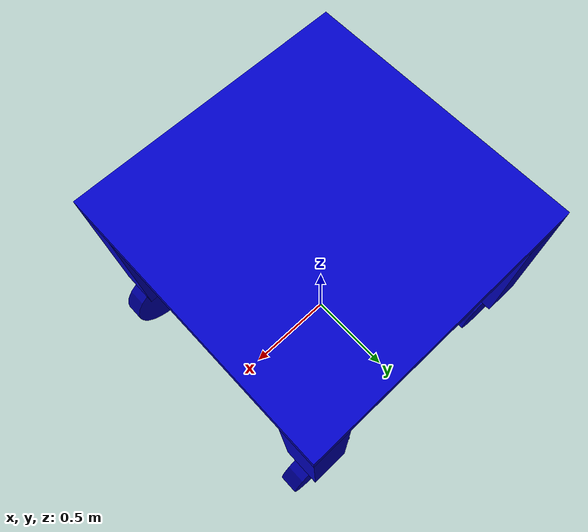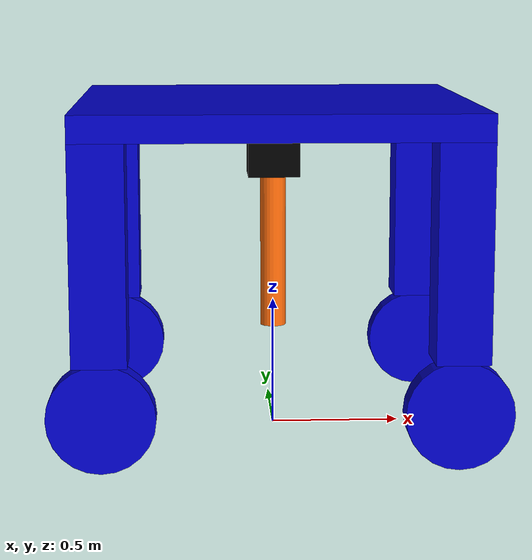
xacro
<?xml version="1.0"?>
<robot xmlns:xacro="http://www.ros.org/wiki/xacro" name="robot">
	<xacro:include filename="inertia.urdf.xacro" />
	<xacro:include filename="materials.urdf.xacro" />

	<link name="world"></link>

	<xacro:property name="height" value="1.2" />
	<joint name="base_joint" type="fixed">
		<origin xyz="0 0 1.2" rpy="0 0 0" />
		<parent link="world" />
		<child link="base_link" />
	</joint>

	<xacro:property name="base_l" value="1.5" />
	<xacro:property name="base_w" value="1.5" />
	<xacro:property name="base_h" value="0.1" />
	<xacro:property name="base_m" value="5" />
	<link name="base_link">
		<visual>
			<origin xyz="0 0 ${base_h/2}" rpy="0 0 0" />
			<geometry>
				<box size="${base_l} ${base_w} ${base_h}" />
			</geometry>
			<material name="blue"/>
		</visual>
		<collision>
			<origin xyz="0 0 ${base_h/2}" rpy="0 0 0" />
			<geometry>
				<box size="${base_l} ${base_w} ${base_h}" />
			</geometry>
		</collision>
		<inertial>
			<origin xyz="0 0 ${base_h/2}" rpy="0 0 0" />
			<mass value="${base_m}" />
			<xacro:box_inertia m="${base_m}" x="${base_l}" y="${base_w}" z="${base_h}" />
		</inertial>
	</link>

	<joint name="first_axis_joint" type="prismatic">
		<origin xyz="0 0 0" rpy="0 0 0" />
		<parent link="base_link" />
		<child link="first_axis_link" />
		<axis xyz="1 0 0" />
		<limit lower="${-base_l/2}" upper="${base_l/2}" velocity="100" effort="100" />
	</joint>

	<xacro:property name="first_l" value="0.2" />
	<xacro:property name="first_w" value="0.2" />
	<xacro:property name="first_h" value="0.2" />
	<xacro:property name="first_m" value="0.5" />
	<link name="first_axis_link">
		<visual>
			<origin xyz="0 0 ${-first_h/2}" rpy="0 0 0" />
			<geometry>
				<box size="${first_l} ${first_w} ${first_h}" />
			</geometry>
			<material name="black"/>
		</visual>
		<collision>
			<origin xyz="0 0 ${-first_h}" rpy="0 0 0" />
			<geometry>
				<box size="${first_l} ${first_w} ${first_h}" />
			</geometry>
		</collision>
		<inertial>
			<origin xyz="0 0 ${-first_h/2}" rpy="0 0 0" />
			<mass value="${first_m}" />
			<xacro:box_inertia m="${first_m}" x="${first_l}" y="${first_w}" z="${first_h}" />
		</inertial>
	</link>

	<joint name="second_axis_joint" type="revolute">
		<origin xyz="0 0 ${-first_h}" rpy="0 0 0" />
		<parent link="first_axis_link" />
		<child link="second_axis_link" />
		<axis xyz="1 0 0" />
		<limit lower="${-pi/2}" upper="${pi/2}" velocity="100" effort="100" />
	</joint>

	<xacro:property name="arm_length" value="0.6" />
	<xacro:property name="arm_radius" value="0.05" />
	<xacro:property name="arm_mass" value="1" />
	<link name="second_axis_link">
		<visual>
			<origin xyz="0 0 ${-arm_length/2}" rpy="0 0 0" />
			<geometry>
				<cylinder length="${arm_length}" radius="${arm_radius}" />
			</geometry>
			<material name="orange"/>
		</visual>
		<collision>
			<origin xyz="0 0 ${-arm_length/2}" rpy="0 0 0" />
			<geometry>
				<cylinder length="${arm_length}" radius="${arm_radius}" />
			</geometry>
		</collision>
		<inertial>
			<origin xyz="0 0 ${-arm_length/2}" rpy="0 0 0" />
			<mass value="${arm_mass}" />
			<xacro:cylinder_inertia m="${arm_mass}" r="${arm_radius}" h="${arm_length}" />
		</inertial>
	</link>

	<xacro:property name="arm2_radius" value="0.03" />
	<xacro:property name="arm2_length" value="0.5" />
	<xacro:property name="arm2_mass" value="0.5" />
	<joint name="third_axis_joint" type="prismatic">
		<origin xyz="0 0 ${-arm_length}" rpy="0 0 0" />
		<parent link="second_axis_link" />
		<child link="third_axis_link" />
		<axis xyz="0 0 -1" />
		<limit lower="0" upper="${arm2_length}" velocity="100" effort="100" />
	</joint>

	<link name="third_axis_link">
		<visual>
			<origin xyz="0 0 ${arm2_length/2}" rpy="0 0 0" />
			<geometry>
				<cylinder length="${arm2_length}" radius="${arm2_radius}" />
			</geometry>
			<material name="orange"/>
		</visual>
		<collision>
			<origin xyz="0 0 ${arm2_length/2}" rpy="0 0 0" />
			<geometry>
				<cylinder length="${arm2_length}" radius="${arm2_radius}" />
			</geometry>
		</collision>
		<inertial>
			<origin xyz="0 0 ${arm2_length/2}" rpy="0 0 0" />
			<mass value="${arm2_mass}" />
			<xacro:cylinder_inertia m="${arm2_mass}" r="${arm2_radius}" h="${arm2_length}" />
		</inertial>
	</link>

	<xacro:property name="top_l" value="0.2" />
	<xacro:property name="top_w" value="0.2" />
	<xacro:property name="wheel_r" value="0.2" />
	<xacro:property name="wheel_l" value="0.1" />
	<xacro:property name="wheel_m" value="5" />
	<xacro:property name="top_h" value="${height-2*wheel_r}" />
	<xacro:macro name="wheel" params="prefix x y">
		<joint name="${prefix}_wheel_joint" type="fixed">
			<parent link="base_link" />
			<child link="${prefix}_wheel_link" />
			<origin xyz="${x} ${y} 0" rpy="0 0 0" />
		</joint>

		<link name="${prefix}_wheel_link">
			<visual>
				<origin xyz="0 0 ${-top_h/2}" rpy="0 0 0"/>
				<geometry>
					<box size="${top_l} ${top_w} ${top_h}" />
				</geometry>
				<material name="blue"/>
			</visual>
			<visual>
				<origin xyz="0 0 ${-top_h-wheel_r}" rpy="${pi/2} 0 0"/>
				<geometry>
					<cylinder radius="${wheel_r}" length="${wheel_l}" />
				</geometry>
				<material name="blue"/>
			</visual>
			<collision>
				<origin xyz="0 0 ${-top_h/2-wheel_r}" rpy="0 0 0"/>
				<geometry>
					<box size="${top_l} ${2*wheel_r} ${top_h+2*wheel_r}" />
				</geometry>
			</collision>
			<inertial>
				<origin xyz="0 0 ${-top_h/2-wheel_r}" rpy="0 0 0"/>
				<mass value="${wheel_m}" />
				<xacro:box_inertia m="${wheel_m}" x="${top_w}" y="${2*wheel_r}" z="${top_h+2*wheel_r}" />
			</inertial>
		</link>
	</xacro:macro>

	<xacro:wheel prefix="fl" x="${base_l/2-top_w/2}" y="${base_w/2-top_l/2}" />
	<xacro:wheel prefix="bl" x="${-base_l/2+top_w/2}" y="${base_w/2-top_l/2}" />
	<xacro:wheel prefix="fr" x="${base_l/2-top_w/2}" y="${-base_w/2+top_l/2}" />
	<xacro:wheel prefix="br" x="${-base_l/2+top_w/2}" y="${-base_w/2+top_l/2}" />
</robot>

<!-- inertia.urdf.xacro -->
<robot xmlns:xacro="http://www.ros.org/wiki/xacro">
  <xacro:macro name="cylinder_inertia" params="m r h">
    <inertia
      ixx="${m*(3*r*r+h*h)/12}"
      ixy="0"
      ixz="0"
      iyy="${m*(3*r*r+h*h)/12}"
      iyz="0"
      izz="${m*r*r/2}"
    />
  </xacro:macro>
  <xacro:macro name="box_inertia" params="m x y z">
    <inertia
      ixx="${m*(y*y+z*z)/12}"
      ixy="0"
      ixz="0"
      iyy="${m*(x*x+z*z)/12}"
      iyz="0"
      izz="${m*(x*x+y*y)/12}"
    />
  </xacro:macro>
  <xacro:macro name="sphere_inertia" params="m r">
    <inertia
      ixx="${2*m*r*r/5}"
      ixy="0"
      ixz="0"
      iyy="${2*m*r*r/5}"
      iyz="0"
      izz="${2*m*r*r/5}"
    />
  </xacro:macro>
</robot>

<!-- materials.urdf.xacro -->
<robot xmlns:xacro="http://www.ros.org/wiki/xacro">
    <material name="black">
        <color rgba="0 0 0 ${255/255}" />
    </material>
    <material name="dark_grey">
        <color rgba="0 0 ${155/255} ${255/255}" />
    </material>
    <material name="blue">
        <color rgba="0 0 ${200/255} ${255/255}" />
    </material>
    <material name="green">
        <color rgba="0 ${200/255} 0 ${255/255}" />
    </material>
    <material name="grey">
        <color rgba="${50/255} ${50/255} ${50/255} ${255/255}" />
    </material>
    <material name="orange">
        <color rgba="${255/255} ${108/255} ${10/255} ${255/255}" />
    </material>
    <material name="brown">
        <color rgba="${222/255} ${207/255} ${195/255} ${255/255}" />
    </material>
    <material name="red">
        <color rgba="${200/255} 0 0 ${255/255}" />
    </material>
    <material name="white">
        <color rgba="${255/255} ${255/255} ${255/255} ${255/255}" />
    </material>
</robot>
